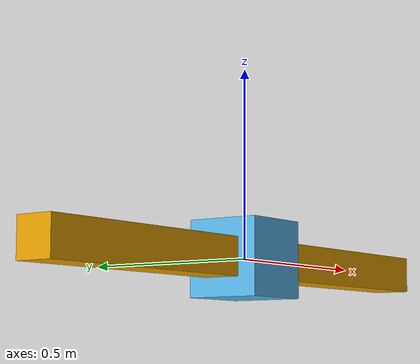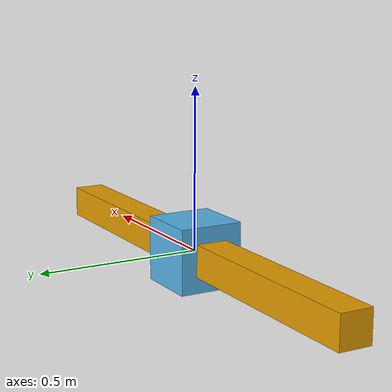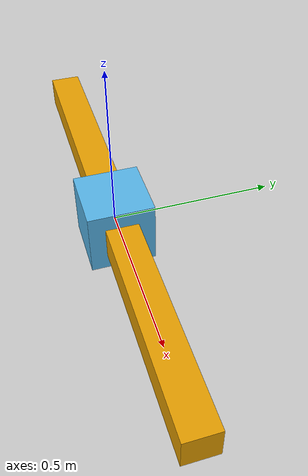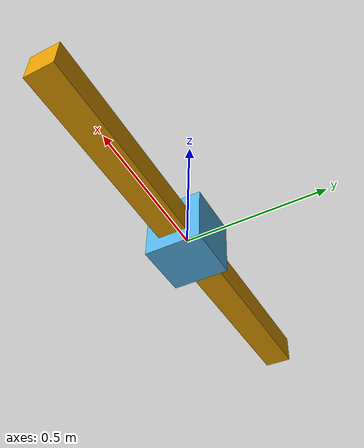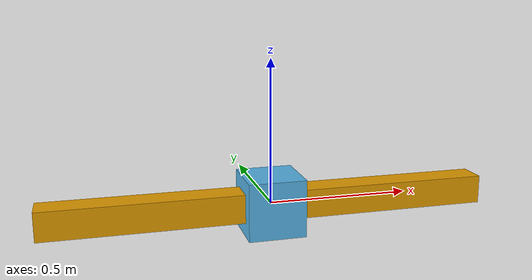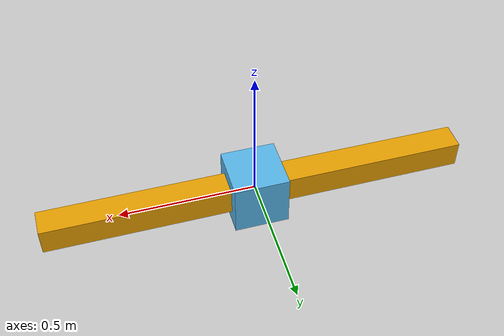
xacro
<?xml version='1.0' encoding='utf-8'?>
<robot xmlns:xacro="http://www.ros.org/wiki/xacro" name="aramis">

  <xacro:arg name="length" default="1.56"/>
  <xacro:arg name="min_lim" default="-0.740"/>
  <xacro:arg name="max_lim" default="0.826"/>
  <xacro:arg name="vel_lim" default="0.5"/>

  <!-- Base Link -->
  <link name="base_link">
    <visual>
      <geometry>
        <box size="$(arg length) 0.1 0.1"/>
      </geometry>
    </visual>
    <collision>
      <geometry>
        <box size="$(arg length) 0.1 0.1"/>
      </geometry>
    </collision>
    <inertial>
      <mass value="1"/>
      <inertia ixx="1" ixy="0" ixz="0" iyy="1" iyz="0" izz="1"/>
    </inertial>
  </link>

  <link name="link1">
    <visual>
      <geometry>
        <box size="0.2 0.2 0.2"/>
      </geometry>
    </visual>
    <collision>
      <geometry>
        <box size="0.2 0.2 0.2"/>
      </geometry>
    </collision>
    <inertial>
      <mass value="1"/>
      <inertia ixx="1" ixy="0" ixz="0" iyy="1" iyz="0" izz="1"/>
    </inertial>
  </link>

  <joint name = "linear_joint" type="prismatic">
    <parent link = "base_link"/>
    <child link = "link1"/>
    <origin xyz = "0.0 0.0 0.0"/>
    <limit effort="1000.0" lower="$(arg min_lim)" upper="$(arg max_lim)" velocity="$(arg vel_lim)"/>
    <axis xyz = "1 0 0"/>
    <dynamics damping="0.2" friction="0.1" />
  </joint>

</robot>
